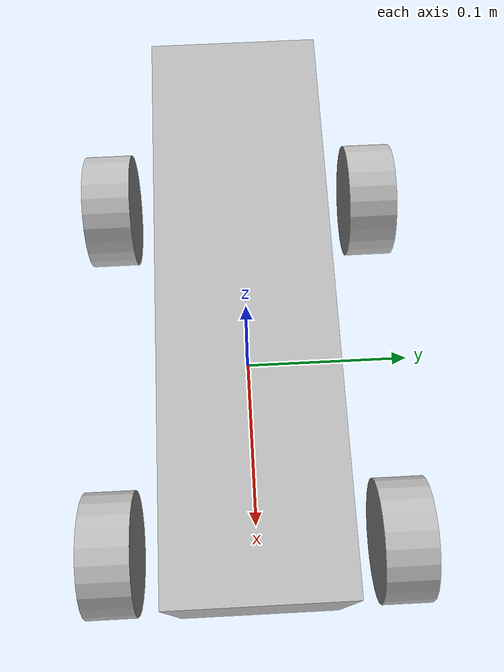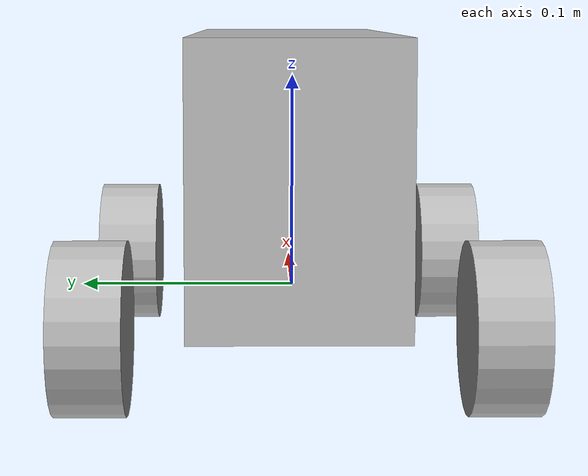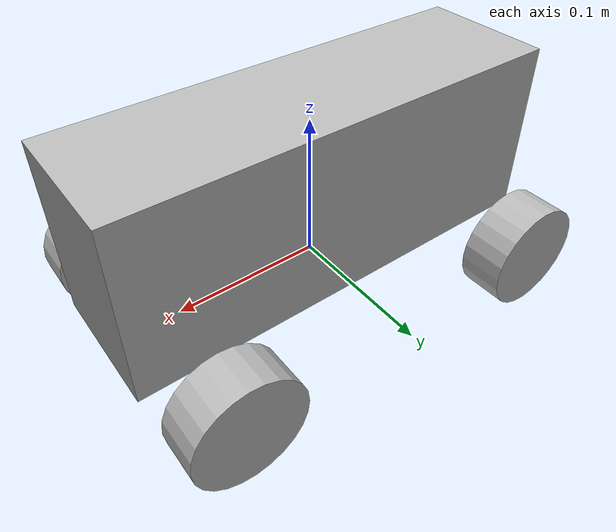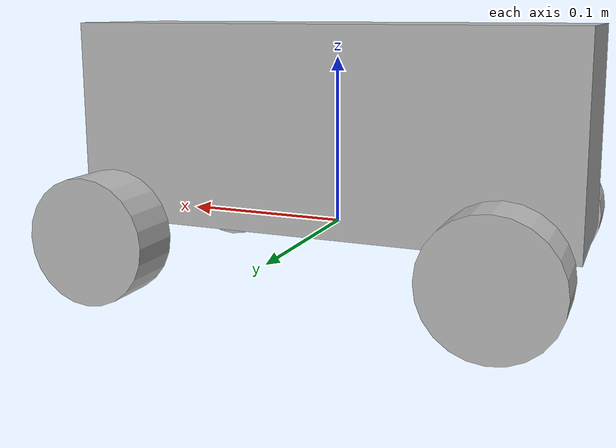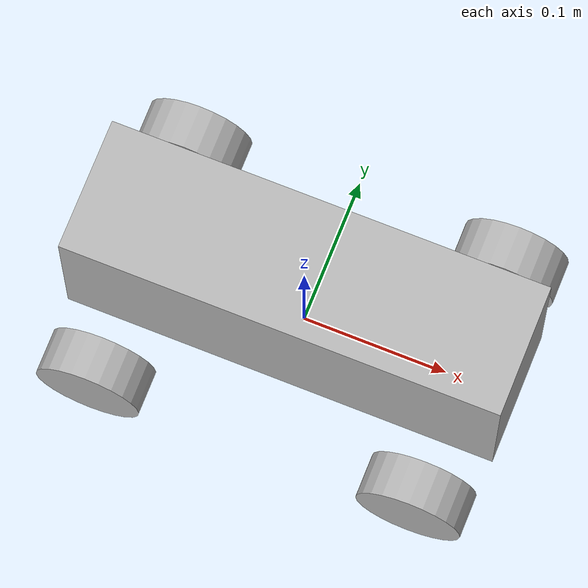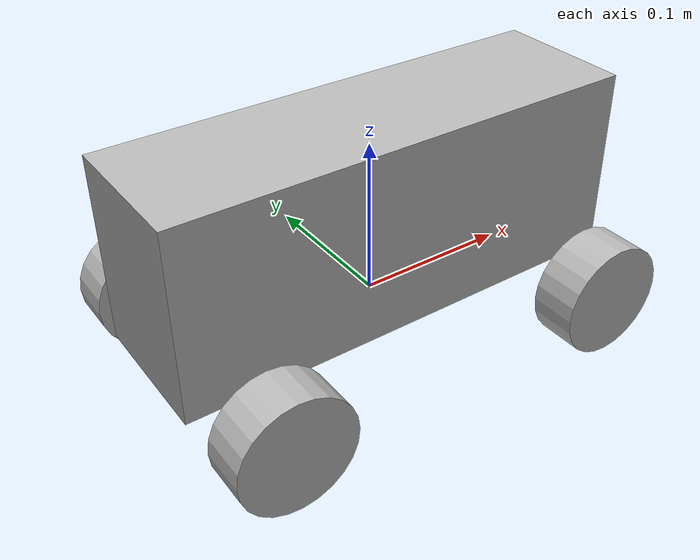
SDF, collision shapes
<sdf version="1.8">
  <model name="saye">
    <self_collide>false</self_collide>
    <static>false</static>

    <link name="base_link">
      <gz_frame_id>saye/base_link</gz_frame_id>
      <inertial>
        <pose >0 0 0 0 0 0</pose>
        <mass>3.0</mass>
        <inertia>
          <ixx>0.0054</ixx>
          <ixy>0</ixy>
          <ixz>0</ixz>
          <iyy>0.0252</iyy>
          <iyz>0</iyz>
          <izz>0.0252</izz>
        </inertia>
      </inertial>
      <visual name="BaseVisual">
        <pose>.1371 0 -.0115 -0.018 0 1.5707</pose>
        <geometry>
          <mesh>
           <uri>model://saye/meshes/BaseReduced.dae</uri>
          </mesh>
        </geometry>
      </visual>
      <visual name="saye/TopVisual">
        <pose>.1371 0 -.0115 -0.018 0 1.5707</pose>
        <geometry>
          <mesh>
           <uri>model://saye/meshes/TopReduced.dae</uri>
          </mesh>
        </geometry>
      </visual>
      <collision name="saye/BaseCollision">
        <pose>0 0 .06 0 0 0</pose>
        <geometry>
          <box>
            <size>.3 .09 .12</size>
          </box>
        </geometry>
      </collision>
      <visual name="saye/visual_lidar">
        <pose>0.05 0 .106 0 0 0</pose>
        <geometry>
          <mesh>
           <uri>model://saye/meshes/STL27L.dae</uri>
          </mesh>
        </geometry>
      </visual>
      <visual name="saye/camera_rack">
        <pose>0 0 .184 0 0 0</pose>
        <geometry>
          <box>
            <size>0.03 0.03 0.03</size>
          </box>
        </geometry>
      </visual>

      <sensor name="imu_sensor" type="imu">
        <always_on>1</always_on>
        <update_rate>50</update_rate>
        <topic>imu</topic>
        <imu>
          <enable_orientation>0</enable_orientation>
          <angular_velocity>
            <x>
              <noise type="gaussian">
                <mean>0</mean>
                <stddev>0.009</stddev>
                <bias_mean>0.00075</bias_mean>
                <bias_stddev>0.005</bias_stddev>
                <dynamic_bias_stddev>0.00002</dynamic_bias_stddev>
                <dynamic_bias_correlation_time>400.0</dynamic_bias_correlation_time>
                <precision>0.00025</precision>
              </noise>
            </x>
            <y>
              <noise type="gaussian">
                <mean>0</mean>
                <stddev>0.009</stddev>
                <bias_mean>0.00075</bias_mean>
                <bias_stddev>0.005</bias_stddev>
                <dynamic_bias_stddev>0.00002</dynamic_bias_stddev>
                <dynamic_bias_correlation_time>400.0</dynamic_bias_correlation_time>
                <precision>0.00025</precision>
              </noise>
            </y>
            <z>
              <noise type="gaussian">
                <mean>0</mean>
                <stddev>0.009</stddev>
                <bias_mean>0.00075</bias_mean>
                <bias_stddev>0.005</bias_stddev>
                <dynamic_bias_stddev>0.00002</dynamic_bias_stddev>
                <dynamic_bias_correlation_time>400.0</dynamic_bias_correlation_time>
                <precision>0.00025</precision>
              </noise>
            </z>
          </angular_velocity>
          <linear_acceleration>
            <x>
              <noise type="gaussian">
                <mean>0</mean>
                <stddev>0.021</stddev>
                <bias_mean>0.05</bias_mean>
                <bias_stddev>0.0075</bias_stddev>
                <dynamic_bias_stddev>0.000375</dynamic_bias_stddev>
                <dynamic_bias_correlation_time>175.0</dynamic_bias_correlation_time>
                <precision>0.005</precision>
              </noise>
            </x>
            <y>
              <noise type="gaussian">
                <mean>0</mean>
                <stddev>0.021</stddev>
                <bias_mean>0.05</bias_mean>
                <bias_stddev>0.0075</bias_stddev>
                <dynamic_bias_stddev>0.000375</dynamic_bias_stddev>
                <dynamic_bias_correlation_time>175.0</dynamic_bias_correlation_time>
                <precision>0.005</precision>
              </noise>
            </y>
            <z>
              <noise type="gaussian">
                <mean>0</mean>
                <stddev>0.021</stddev>
                <bias_mean>0.05</bias_mean>
                <bias_stddev>0.0075</bias_stddev>
                <dynamic_bias_stddev>0.000375</dynamic_bias_stddev>
                <dynamic_bias_correlation_time>175.0</dynamic_bias_correlation_time>
                <precision>0.005</precision>
              </noise>
            </z>
          </linear_acceleration>
        </imu>
      </sensor>

      <sensor name="gpu_lidar" type="gpu_lidar">
        <lidar>
          <scan>
            <horizontal>
              <samples>720</samples>
              <resolution>1</resolution>
              <min_angle>-3.1459</min_angle>
              <max_angle>3.1459</max_angle>
            </horizontal>
            <vertical>
              <samples>12</samples>
              <resolution>1</resolution>
              <min_angle>-0.261799</min_angle>
              <max_angle>0.261799</max_angle>
            </vertical>
          </scan>
          <range>
            <min>0.3</min>
            <max>50</max>
            <resolution>0.01</resolution>
          </range>
          <noise>
            <type>gaussian</type>
            <mean>0</mean>
            <stddev>0.01</stddev>
          </noise>
        </lidar>
        <gz_frame_id>saye/base_link</gz_frame_id>
        <topic>scan</topic>
        <visualize>true</visualize>
        <update_rate>10</update_rate>
      </sensor>

      <sensor name="rs_front" type="rgbd_camera">
        <pose>0.122 0 0.257 0 0.5 0</pose>
        <always_on>1</always_on>
        <update_rate>10</update_rate>
        <camera name="rs_front">
          <horizontal_fov>1.50098</horizontal_fov>
          <lens>
            <intrinsics>
              <!-- fx = fy = width / ( 2 * tan (hfov / 2 ) ) -->
              <fx>343.159</fx>
              <fy>343.159</fy>
              <!-- cx = ( width - 1 ) / 2 -->
              <cx>319.5</cx>
              <!-- cy = ( height - 1 ) / 2 -->
              <cy>179.5</cy>
              <s>0</s>
            </intrinsics>
          </lens>
          <distortion>
            <k1>0.0</k1>
            <k2>0.0</k2>
            <k3>0.0</k3>
            <p1>0.0</p1>
            <p2>0.0</p2>
            <center>0.5 0.5</center>
          </distortion>
          <image>
            <width>640</width>
            <height>360</height>
            <format>R8G8B8</format>
          </image>
          <clip>
            <near>0.01</near>
            <far>300</far>
          </clip>
          <depth_camera>
            <clip>
              <near>0.1</near>
              <far>10</far>
            </clip>
          </depth_camera>
          <noise>
            <type>gaussian</type>
            <mean>0</mean>
            <stddev>0.007</stddev>
          </noise>
        </camera>
        <topic>rs_front</topic>
        <visualize>true</visualize>
      </sensor>

       <sensor name="camera_front" type="camera">
         <pose>0.111 0.03 0.235 0 0 0</pose>
         <always_on>1</always_on>
         <update_rate>10</update_rate>
         <camera name="camera_front">
           <horizontal_fov>1.658</horizontal_fov>
           <lens>
             <intrinsics>
               <!-- fx = fy = width / ( 2 * tan (hfov / 2 ) ) -->
               <fx>329.9</fx>
               <fy>329.9</fy>
               <!-- cx = ( width - 1 ) / 2 -->
               <cx>359.5</cx>
               <!-- cy = ( height - 1 ) / 2 -->
               <cy>539.5</cy>
               <s>0</s>
             </intrinsics>
           </lens>
           <distortion>
             <k1>0.0</k1>
             <k2>0.0</k2>
             <k3>0.0</k3>
             <p1>0.0</p1>
             <p2>0.0</p2>
             <center>0.5 0.5</center>
           </distortion>
           <image>
             <width>720</width>
             <height>1080</height>
             <format>R8G8B8</format>
           </image>
           <clip>
             <near>0.01</near>
             <far>300</far>
           </clip>
           <noise>
             <type>gaussian</type>
             <mean>0</mean>
             <stddev>0.007</stddev>
           </noise>
         </camera>
        <topic>camera_front</topic>
        <visualize>true</visualize>
       </sensor>

       <sensor name="camera_rear" type="camera">
         <pose>0.069 -0.03 0.235 0 0 3.141592653589793</pose>
         <always_on>1</always_on>
         <update_rate>10</update_rate>
         <camera name="camera_rear">
           <horizontal_fov>1.658</horizontal_fov>
           <lens>
             <intrinsics>
               <!-- fx = fy = width / ( 2 * tan (hfov / 2 ) ) -->
               <fx>329.9</fx>
               <fy>329.9</fy>
               <!-- cx = ( width - 1 ) / 2 -->
               <cx>359.5</cx>
               <!-- cy = ( height - 1 ) / 2 -->
               <cy>539.5</cy>
               <s>0</s>
             </intrinsics>
           </lens>
           <distortion>
             <k1>0.0</k1>
             <k2>0.0</k2>
             <k3>0.0</k3>
             <p1>0.0</p1>
             <p2>0.0</p2>
             <center>0.5 0.5</center>
           </distortion>
           <image>
             <width>720</width>
             <height>1080</height>
             <format>R8G8B8</format>
           </image>
           <clip>
             <near>0.01</near>
             <far>300</far>
           </clip>
           <noise>
             <type>gaussian</type>
             <mean>0</mean>
             <stddev>0.007</stddev>
           </noise>
         </camera>
         <topic>camera_rear</topic>
         <visualize>true</visualize>
       </sensor>

       <sensor name="camera_left" type="camera">
         <pose>0.085 0.09 0.27 0 0 1.5707963267948966</pose>
         <always_on>1</always_on>
         <update_rate>10</update_rate>
         <camera name="camera_left">
           <horizontal_fov>1.658</horizontal_fov>
           <lens>
             <intrinsics>
               <!-- fx = fy = width / ( 2 * tan (hfov / 2 ) ) -->
               <fx>329.9</fx>
               <fy>329.9</fy>
               <!-- cx = ( width - 1 ) / 2 -->
               <cx>359.5</cx>
               <!-- cy = ( height - 1 ) / 2 -->
               <cy>539.5</cy>
               <s>0</s>
             </intrinsics>
           </lens>
           <distortion>
             <k1>0.0</k1>
             <k2>0.0</k2>
             <k3>0.0</k3>
             <p1>0.0</p1>
             <p2>0.0</p2>
             <center>0.5 0.5</center>
           </distortion>
           <image>
             <width>720</width>
             <height>1080</height>
             <format>R8G8B8</format>
           </image>
           <clip>
             <near>0.01</near>
             <far>300</far>
           </clip>
           <noise>
             <type>gaussian</type>
             <mean>0</mean>
             <stddev>0.007</stddev>
           </noise>
         </camera>
         <topic>camera_left</topic>
         <visualize>true</visualize>
       </sensor>

       <sensor name="camera_right" type="camera">
         <pose>0.085 -0.09 0.27 0 0 -1.5707963267948966</pose>
         <always_on>1</always_on>
         <update_rate>10</update_rate>
         <camera name="camera_right">
           <horizontal_fov>1.658</horizontal_fov>
           <lens>
             <intrinsics>
               <!-- fx = fy = width / ( 2 * tan (hfov / 2 ) ) -->
               <fx>329.9</fx>
               <fy>329.9</fy>
               <!-- cx = ( width - 1 ) / 2 -->
               <cx>359.5</cx>
               <!-- cy = ( height - 1 ) / 2 -->
               <cy>539.5</cy>
               <s>0</s>
             </intrinsics>
           </lens>
           <distortion>
             <k1>0.0</k1>
             <k2>0.0</k2>
             <k3>0.0</k3>
             <p1>0.0</p1>
             <p2>0.0</p2>
             <center>0.5 0.5</center>
           </distortion>
           <image>
             <width>720</width>
             <height>1080</height>
             <format>R8G8B8</format>
           </image>
           <clip>
             <near>0.01</near>
             <far>300</far>
           </clip>
           <noise>
             <type>gaussian</type>
             <mean>0</mean>
             <stddev>0.007</stddev>
           </noise>
         </camera>
         <topic>camera_right</topic>
         <visualize>true</visualize>
       </sensor>

      <!-- TUTAJ WKLEJ NOWY KOD KAMERY -->
      <sensor name="chase_camera" type="camera">
         <pose>0 0 0.5 0 1.5707 0</pose> <!-- 0.5 metra nad, patrząc w dół (Pitch = PI/2) -->
         <always_on>1</always_on>
         <update_rate>30</update_rate>
         <camera name="chase_camera_lens">
           <horizontal_fov>1.2</horizontal_fov>
           <image>
             <width>540</width>
             <height>720</height>
             <format>R8G8B8</format>
           </image>
           <clip>
             <near>0.1</near>
             <far>100</far>
           </clip>
         </camera>
         <topic>chase_camera/image_raw</topic>
         <visualize>true</visualize>
       </sensor>

    </link>

    <link name="front_left_wheel_link">
      <pose relative_to="front_left_wheel_joint">0 0 0 0 0 0</pose>
      <inertial>
        <mass>.05</mass>
        <inertia>
          <ixx>0.00003331</ixx>
          <ixy>0</ixy>
          <ixz>0</ixz>
          <iyy>0.0000204</iyy>
          <iyz>0</iyz>
          <izz>0.0000204</izz>
        </inertia>
      </inertial>
      <gravity>true</gravity>
      <velocity_decay/>
      <visual name="saye/FrontLeftWheelVisual">
        <pose>0 0 0 0 0 3.14159</pose>
        <geometry>
          <mesh>
           <uri>model://saye/meshes/Wheel.dae</uri>
          </mesh>
        </geometry>
      </visual>
      <collision name="saye/FrontLeftWheelCollision">
        <pose>0 -.015 0 -1.5707 0 0</pose>
        <geometry>
          <cylinder>
            <length>0.03</length>
            <radius>0.0365</radius>
          </cylinder>
        </geometry>
        <surface>
          <friction>
            <ode>
              <mu>0.5</mu>
              <mu2>1.0</mu2>
              <fdir1>0 0 1</fdir1>
            </ode>
          </friction>
        </surface>
      </collision>
    </link>
    <link name="front_left_wheel_steering_link">
      <pose relative_to="front_left_wheel_steering_joint">0 0 0 0 0 0</pose>
      <inertial>
        <mass>0.005</mass>
        <inertia>
          <ixx>0.0000018</ixx>
          <iyy>0.0000018</iyy>
          <izz>0.0000018</izz>
        </inertia>
      </inertial>
    </link>
    <joint name="front_left_wheel_joint" type="revolute">
      <parent>front_left_wheel_steering_link</parent>
      <child>front_left_wheel_link</child>
      <pose relative_to="front_left_wheel_steering_joint">0 0 0 0 0 0</pose>
      <axis>
        <xyz>0 1 0</xyz>
        <limit>
          <lower>-1.79769e+308</lower>
          <upper>1.79769e+308</upper>
        </limit>
        <dynamics>
          <spring_reference>0</spring_reference>
          <spring_stiffness>0</spring_stiffness>
        </dynamics>
        <use_parent_model_frame>1</use_parent_model_frame>
      </axis>
    </joint>
    <joint name="front_left_wheel_steering_joint" type="revolute">
      <parent>base_link</parent>
      <child>front_left_wheel_steering_link</child>
      <pose relative_to="base_link">.112 .10 0 0 0 0</pose>
      <axis>
        <xyz>0 0 1</xyz>
        <limit>
          <lower>-0.6</lower>
          <upper>0.6</upper>
          <velocity>1.0</velocity>
          <effort>25</effort>
        </limit>
        <use_parent_model_frame>1</use_parent_model_frame>
      </axis>
    </joint>

    <link name="front_right_wheel_link">
      <pose relative_to="front_right_wheel_joint">0 0 0 0 0 0</pose>
      <inertial>
        <mass>.05</mass>
        <inertia>
          <ixx>0.00003331</ixx>
          <ixy>0</ixy>
          <ixz>0</ixz>
          <iyy>0.0000204</iyy>
          <iyz>0</iyz>
          <izz>0.0000204</izz>
        </inertia>
      </inertial>
      <gravity>true</gravity>
      <velocity_decay/>
      <visual name="saye/FrontRightWheelVisual">
        <pose>0 0 0 0 0 0</pose>
        <geometry>
          <mesh>
           <uri>model://saye/meshes/Wheel.dae</uri>
          </mesh>
        </geometry>
      </visual>
      <collision name="saye/FrontRightWheelCollision">
        <pose>0 .015 0 -1.5707 0 0</pose>
        <geometry>
          <cylinder>
            <length>0.03</length>
            <radius>0.0365</radius>
          </cylinder>
        </geometry>
        <surface>
          <friction>
            <ode>
              <mu>0.5</mu>
              <mu2>1.0</mu2>
              <fdir1>0 0 1</fdir1>
            </ode>
          </friction>
        </surface>
      </collision>
    </link>
    <link name="front_right_wheel_steering_link">
      <pose relative_to="front_right_wheel_steering_joint">0 0 0 0 0 0</pose>
      <inertial>
        <mass>0.005</mass>
        <inertia>
          <ixx>0.0000018</ixx>
          <iyy>0.0000018</iyy>
          <izz>0.0000018</izz>
        </inertia>
      </inertial>
    </link>
    <joint name="front_right_wheel_joint" type="revolute">
      <parent>front_right_wheel_steering_link</parent>
      <child>front_right_wheel_link</child>
      <pose relative_to="front_right_wheel_steering_joint">0 0 0 0 0 0</pose>
      <axis>
        <xyz>0 1 0</xyz>
        <limit>
          <lower>-1.79769e+308</lower>
          <upper>1.79769e+308</upper>
        </limit>
        <dynamics>
          <spring_reference>0</spring_reference>
          <spring_stiffness>0</spring_stiffness>
        </dynamics>
        <use_parent_model_frame>1</use_parent_model_frame>
      </axis>
    </joint>
    <joint name="front_right_wheel_steering_joint" type="revolute">
      <parent>base_link</parent>
      <child>front_right_wheel_steering_link</child>
      <pose relative_to="base_link">.112 -.10 0 0 0 0</pose>
      <axis>
        <xyz>0 0 1</xyz>
        <limit>
          <lower>-0.6</lower>
          <upper>0.6</upper>
          <velocity>1.0</velocity>
          <effort>25</effort>
        </limit>
        <use_parent_model_frame>1</use_parent_model_frame>
      </axis>
    </joint>

    <joint name="rear_right_wheel_joint" type="revolute">
      <parent>base_link</parent>
      <child>rear_right_wheel_link</child>
      <pose relative_to="base_link">-.1135 -.10 0 0 0 0</pose>
      <axis>
        <xyz>0 1 0</xyz>
        <limit>
          <lower>-1.79769e+308</lower>
          <upper>1.79769e+308</upper>
        </limit>
        <dynamics>
          <spring_reference>0</spring_reference>
          <spring_stiffness>0</spring_stiffness>
        </dynamics>
        <use_parent_model_frame>1</use_parent_model_frame>
      </axis>
    </joint>
    <joint name="rear_left_wheel_joint" type="revolute">
      <parent>base_link</parent>
      <child>rear_left_wheel_link</child>
      <pose relative_to="base_link">-.1135 .10 0 0 0 0</pose>
      <axis>
        <xyz>0 1 0</xyz>
        <limit>
          <lower>-1.79769e+308</lower>
          <upper>1.79769e+308</upper>
        </limit>
        <dynamics>
          <spring_reference>0</spring_reference>
          <spring_stiffness>0</spring_stiffness>
        </dynamics>
        <use_parent_model_frame>1</use_parent_model_frame>
      </axis>
    </joint>
    <link name="rear_right_wheel_link">
      <pose relative_to="rear_right_wheel_joint">0 0 0 0 0 0</pose>
      <inertial>
        <mass>.05</mass>
        <inertia>
          <ixx>0.00003331</ixx>
          <ixy>0</ixy>
          <ixz>0</ixz>
          <iyy>0.0000204</iyy>
          <iyz>0</iyz>
          <izz>0.0000204</izz>
        </inertia>
      </inertial>
      <gravity>true</gravity>
      <velocity_decay/>
      <visual name="RearRightWheelVisual">
        <pose>0 0 0 0 0 0</pose>
        <geometry>
          <mesh>
           <uri>model://saye/meshes/Wheel.dae</uri>
          </mesh>
        </geometry>
      </visual>
      <collision name="RearRightWheelCollision">
        <pose>0 .015 0 -1.5707 0 0</pose>
        <geometry>
          <cylinder>
            <length>0.03</length>
            <radius>0.0365</radius>
          </cylinder>
        </geometry>
        <surface>
          <friction>
            <ode>
              <mu>0.5</mu>
              <mu2>1.0</mu2>
              <fdir1>0 0 1</fdir1>
            </ode>
          </friction>
        </surface>
      </collision>
    </link>
    <link name="rear_left_wheel_link">
      <pose relative_to="rear_left_wheel_joint">0 0 0 0 0 0</pose>
      <inertial>
        <mass>.05</mass>
        <inertia>
          <ixx>0.00003331</ixx>
          <ixy>0</ixy>
          <ixz>0</ixz>
          <iyy>0.0000204</iyy>
          <iyz>0</iyz>
          <izz>0.0000204</izz>
        </inertia>
      </inertial>
      <gravity>true</gravity>
      <velocity_decay/>
      <visual name="RearLeftWheelVisual">
        <pose>0 0 0 0 0 3.14159</pose>
        <geometry>
          <mesh>
           <uri>model://saye/meshes/Wheel.dae</uri>
          </mesh>
        </geometry>
      </visual>
      <collision name="RearLeftWheelCollision">
        <pose>0 -.015 0 -1.5707 0 0</pose>
        <geometry>
          <cylinder>
            <length>0.03</length>
            <radius>0.0365</radius>
          </cylinder>
        </geometry>
        <surface>
          <friction>
            <ode>
              <mu>0.5</mu>
              <mu2>1.0</mu2>
              <fdir1>0 0 1</fdir1>
            </ode>
          </friction>
        </surface>
      </collision>
    </link>

    <plugin
      filename="gz-sim-ackermann-steering-system"
      name="gz::sim::systems::AckermannSteering">
      <left_joint>front_left_wheel_joint</left_joint>
      <left_joint>rear_left_wheel_joint</left_joint>
      <right_joint>front_right_wheel_joint</right_joint>
      <right_joint>front_right_wheel_joint</right_joint>
      <left_steering_joint>front_left_wheel_steering_joint</left_steering_joint>
      <right_steering_joint>front_right_wheel_steering_joint</right_steering_joint>
      <kingpin_width>0.199</kingpin_width>
      <steering_limit>0.4</steering_limit>
      <wheel_base>.2255</wheel_base>
      <wheel_separation>.2</wheel_separation>
      <wheel_radius>0.0365</wheel_radius>
      <min_velocity>-10.0</min_velocity>
      <max_velocity>10.0</max_velocity>
      <min_acceleration>-10</min_acceleration>
      <max_acceleration>10</max_acceleration>
      <topic>/cmd_vel</topic>
    </plugin>

    <plugin name='gz::sim::systems::Sensors' filename='gz-sim-sensors-system'></plugin>

    <plugin filename="gz-sim-pose-publisher-system" name="gz::sim::systems::PosePublisher">
      <publish_link_pose>true</publish_link_pose>
      <publish_sensor_pose>true</publish_sensor_pose>
      <publish_model_pose>false</publish_model_pose>
      <use_pose_vector_msg>true</use_pose_vector_msg>
    </plugin>

    <plugin filename="gz-sim-odometry-publisher-system" name="gz::sim::systems::OdometryPublisher">
      <odom_frame>odom</odom_frame>
      <robot_base_frame>saye</robot_base_frame>
      <odom_topic>odom</odom_topic>
      <dimensions>3</dimensions>
    </plugin>

    <plugin filename="gz-sim-joint-state-publisher-system" name="gz::sim::systems::JointStatePublisher"></plugin>

  </model>
</sdf>
